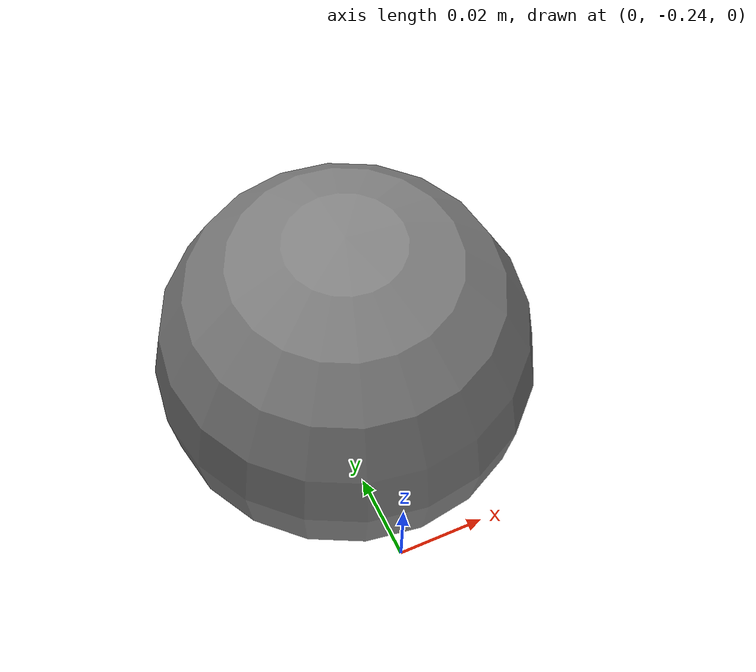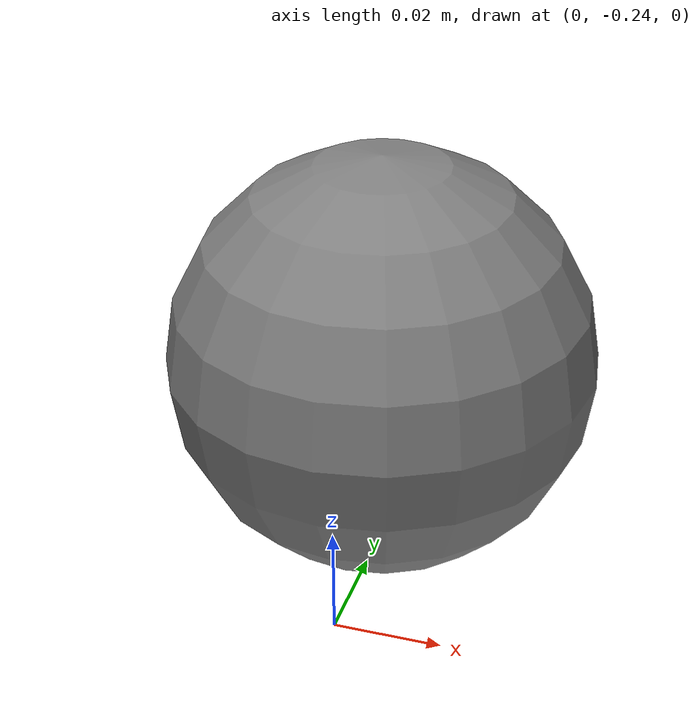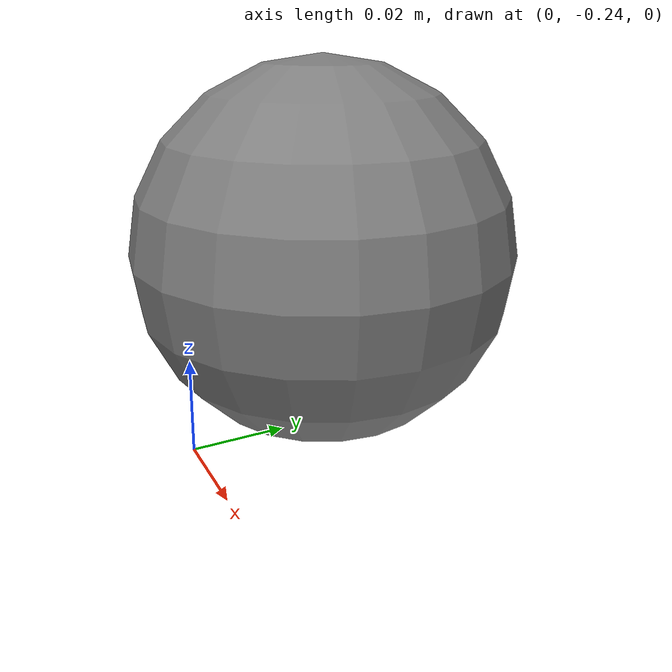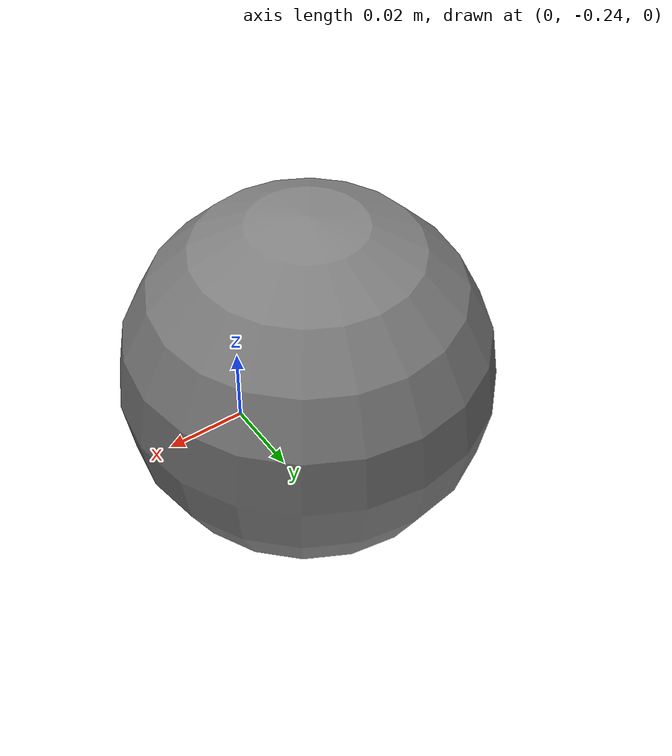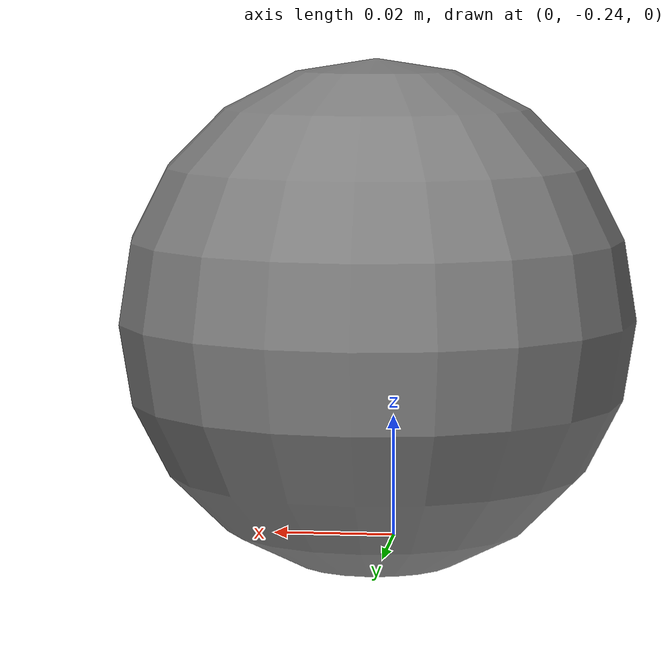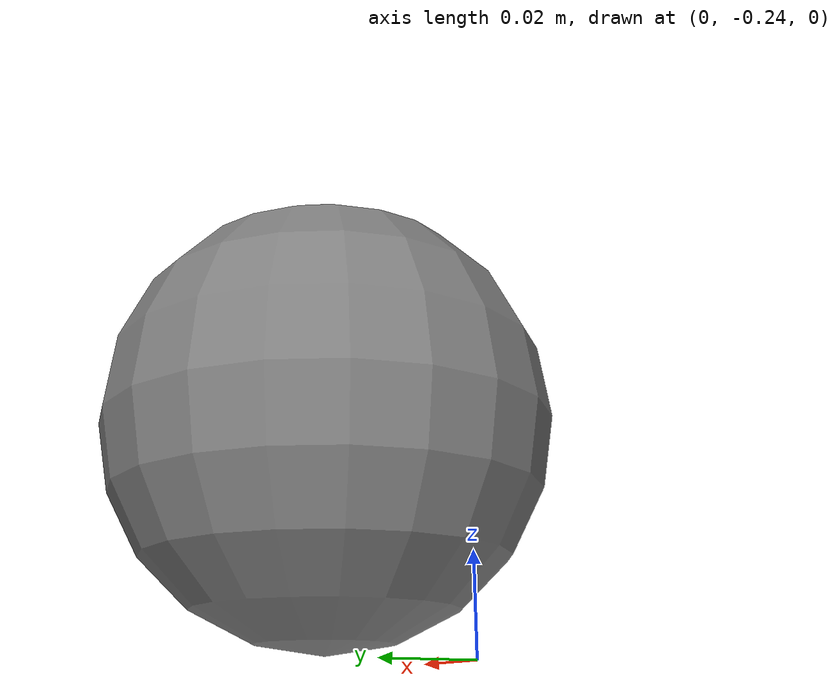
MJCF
<mujoco>
	<worldbody>
		<body name="sphere" pos="0.0 -0.21 0.04">
			<geom type="sphere" size="0.04" condim="6" friction="1 .001 .001"/>
		</body>

	</worldbody>

</mujoco>
